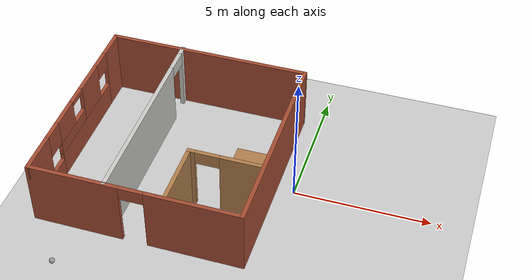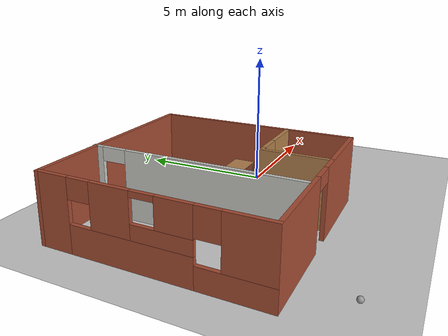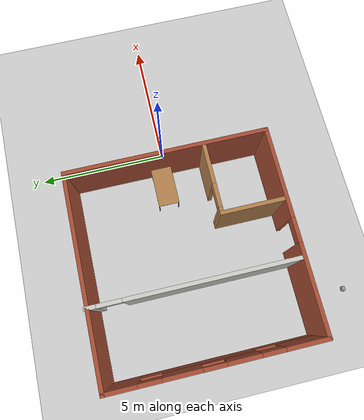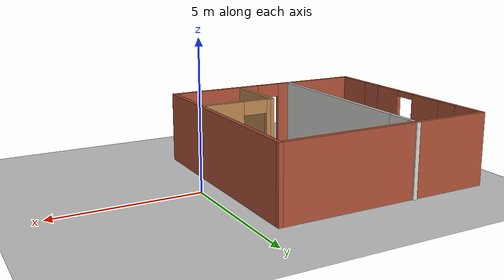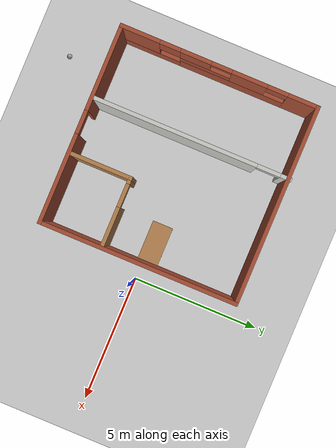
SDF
<sdf version="1.6">
 <world name="default">
  <plugin name="hello" filename="libhello.so"/>
  <light name="sun" type="directional">
   <pose>0 0 10 0 -0 0</pose>
   <diffuse>0.8 0.8 0.8 1</diffuse>
   <specular>0.2 0.2 0.2 1</specular>
   <attenuation>
    <range>1000</range>
    <constant>0.9</constant>
    <linear>0.01</linear>
    <quadratic>0.001</quadratic>
   </attenuation>
   <direction>-0.5 0.1 -0.9</direction>
  </light>
  <model name="ground_plane">
   <static>1</static>
   <link name="link">
    <collision name="collision">
     <geometry><plane><normal>0 0 1</normal><size>100 100</size></plane></geometry>
     <surface>
      <contact><collide_bitmask>65535</collide_bitmask></contact>
      <friction><ode><mu>100</mu><mu2>50</mu2></ode></friction>
     </surface>
    </collision>
    <visual name="visual">
     <cast_shadows>0</cast_shadows>
     <geometry><plane><normal>0 0 1</normal><size>100 100</size></plane></geometry>
     <material>
      <script><uri>file://media/materials/scripts/gazebo.material</uri><name>Gazebo/Grey</name></script>
     </material>
    </visual>
   </link>
  </model>
  <gravity>0 0 -9.8</gravity>
  <magnetic_field>6e-06 2.3e-05 -4.2e-05</magnetic_field>
  <atmosphere type="adiabatic"/>
  <physics name="default_physics" default="0" type="ode">
   <max_step_size>0.001</max_step_size>
   <real_time_factor>1</real_time_factor>
   <real_time_update_rate>1000</real_time_update_rate>
  </physics>
  <scene><ambient>0.4 0.4 0.4 1</ambient><background>0.7 0.7 0.7 1</background><shadows>1</shadows></scene>
  <spherical_coordinates>
   <surface_model>EARTH_WGS84</surface_model>
   <latitude_deg>0</latitude_deg>
   <longitude_deg>0</longitude_deg>
   <elevation>0</elevation>
   <heading_deg>0</heading_deg>
  </spherical_coordinates>
  <model name="Building">
   <pose>-3.58085 -0.038218 0 0 -0 0</pose>
   <link name="Wall_13">
    <pose>-4.73046 -0.023766 0 0 -0 -1.5708</pose>
    <visual name="Wall_13_Visual_0">
     <pose>-3.26262 0 1.25 0 -0 0</pose>
     <geometry><box><size>1.22475 0.15 2.5</size></box></geometry>
     <material>
      <script><uri>file://media/materials/scripts/gazebo.material</uri><name>Gazebo/Bricks</name></script>
      <ambient>1 1 1 1</ambient>
     </material>
     <meta><layer>0</layer></meta>
    </visual>
    <collision name="Wall_13_Collision_0">
     <geometry><box><size>1.22475 0.15 2.5</size></box></geometry>
     <pose>-3.26262 0 1.25 0 -0 0</pose>
    </collision>
    <visual name="Wall_13_Visual_1">
     <pose>-0.568495 0 0.5 0 -0 0</pose>
     <geometry><box><size>4.16351 0.15 1</size></box></geometry>
     <material>
      <script><uri>file://media/materials/scripts/gazebo.material</uri><name>Gazebo/Bricks</name></script>
      <ambient>1 1 1 1</ambient>
     </material>
     <meta><layer>0</layer></meta>
    </visual>
    <collision name="Wall_13_Collision_1">
     <geometry><box><size>4.16351 0.15 1</size></box></geometry>
     <pose>-0.568495 0 0.5 0 -0 0</pose>
    </collision>
    <visual name="Wall_13_Visual_2">
     <pose>2.69413 0 0.375 0 -0 0</pose>
     <geometry><box><size>2.36174 0.15 0.75</size></box></geometry>
     <material>
      <script><uri>file://media/materials/scripts/gazebo.material</uri><name>Gazebo/Bricks</name></script>
      <ambient>1 1 1 1</ambient>
     </material>
     <meta><layer>0</layer></meta>
    </visual>
    <collision name="Wall_13_Collision_2">
     <geometry><box><size>2.36174 0.15 0.75</size></box></geometry>
     <pose>2.69413 0 0.375 0 -0 0</pose>
    </collision>
    <visual name="Wall_13_Visual_3">
     <pose>3.09413 0 1.625 0 -0 0</pose>
     <geometry><box><size>1.56174 0.15 1.75</size></box></geometry>
     <material>
      <script><uri>file://media/materials/scripts/gazebo.material</uri><name>Gazebo/Bricks</name></script>
      <ambient>1 1 1 1</ambient>
     </material>
     <meta><layer>0</layer></meta>
    </visual>
    <collision name="Wall_13_Collision_3">
     <geometry><box><size>1.56174 0.15 1.75</size></box></geometry>
     <pose>3.09413 0 1.625 0 -0 0</pose>
    </collision>
    <visual name="Wall_13_Visual_4">
     <pose>-1.16311 0 1.75 0 -0 0</pose>
     <geometry><box><size>1.37428 0.15 1.5</size></box></geometry>
     <material>
      <script><uri>file://media/materials/scripts/gazebo.material</uri><name>Gazebo/Bricks</name></script>
      <ambient>1 1 1 1</ambient>
     </material>
     <meta><layer>0</layer></meta>
    </visual>
    <collision name="Wall_13_Collision_4">
     <geometry><box><size>1.37428 0.15 1.5</size></box></geometry>
     <pose>-1.16311 0 1.75 0 -0 0</pose>
    </collision>
    <visual name="Wall_13_Visual_5">
     <pose>0.518644 0 1.25 0 -0 0</pose>
     <geometry><box><size>1.98923 0.15 0.5</size></box></geometry>
     <material>
      <script><uri>file://media/materials/scripts/gazebo.material</uri><name>Gazebo/Bricks</name></script>
      <ambient>1 1 1 1</ambient>
     </material>
     <meta><layer>0</layer></meta>
    </visual>
    <collision name="Wall_13_Collision_5">
     <geometry><box><size>1.98923 0.15 0.5</size></box></geometry>
     <pose>0.518644 0 1.25 0 -0 0</pose>
    </collision>
    <visual name="Wall_13_Visual_6">
     <pose>0.918644 0 2 0 -0 0</pose>
     <geometry><box><size>1.18923 0.15 1</size></box></geometry>
     <material>
      <script><uri>file://media/materials/scripts/gazebo.material</uri><name>Gazebo/Bricks</name></script>
      <ambient>1 1 1 1</ambient>
     </material>
     <meta><layer>0</layer></meta>
    </visual>
    <collision name="Wall_13_Collision_6">
     <geometry><box><size>1.18923 0.15 1</size></box></geometry>
     <pose>0.918644 0 2 0 -0 0</pose>
    </collision>
    <visual name="Wall_13_Visual_7">
     <pose>1.91326 0 2.025 0 -0 0</pose>
     <geometry><box><size>0.8 0.15 0.95</size></box></geometry>
     <material>
      <script><uri>file://media/materials/scripts/gazebo.material</uri><name>Gazebo/Bricks</name></script>
      <ambient>1 1 1 1</ambient>
     </material>
     <meta><layer>0</layer></meta>
    </visual>
    <collision name="Wall_13_Collision_7">
     <geometry><box><size>0.8 0.15 0.95</size></box></geometry>
     <pose>1.91326 0 2.025 0 -0 0</pose>
    </collision>
    <visual name="Wall_13_Visual_8">
     <pose>-2.25025 0 2.15 0 -0 0</pose>
     <geometry><box><size>0.8 0.15 0.7</size></box></geometry>
     <material>
      <script><uri>file://media/materials/scripts/gazebo.material</uri><name>Gazebo/Bricks</name></script>
      <ambient>1 1 1 1</ambient>
     </material>
     <meta><layer>0</layer></meta>
    </visual>
    <collision name="Wall_13_Collision_8">
     <geometry><box><size>0.8 0.15 0.7</size></box></geometry>
     <pose>-2.25025 0 2.15 0 -0 0</pose>
    </collision>
    <visual name="Wall_13_Visual_9">
     <pose>-0.075972 0 2.4 0 -0 0</pose>
     <geometry><box><size>0.8 0.15 0.2</size></box></geometry>
     <material>
      <script><uri>file://media/materials/scripts/gazebo.material</uri><name>Gazebo/Bricks</name></script>
      <ambient>1 1 1 1</ambient>
     </material>
     <meta><layer>0</layer></meta>
    </visual>
    <collision name="Wall_13_Collision_9">
     <geometry><box><size>0.8 0.15 0.2</size></box></geometry>
     <pose>-0.075972 0 2.4 0 -0 0</pose>
    </collision>
   </link>
   <link name="Wall_14">
    <pose>-0.930463 -3.82377 0 0 -0 0</pose>
    <visual name="Wall_14_Visual_0">
     <pose>-2.20049 0 1.25 0 -0 0</pose>
     <geometry><box><size>3.34903 0.15 2.5</size></box></geometry>
     <material>
      <script><uri>file://media/materials/scripts/gazebo.material</uri><name>Gazebo/Bricks</name></script>
      <ambient>1 1 1 1</ambient>
     </material>
     <meta><layer>0</layer></meta>
    </visual>
    <collision name="Wall_14_Collision_0">
     <geometry><box><size>3.34903 0.15 2.5</size></box></geometry>
     <pose>-2.20049 0 1.25 0 -0 0</pose>
    </collision>
    <visual name="Wall_14_Visual_1">
     <pose>2.12451 0 1.25 0 -0 0</pose>
     <geometry><box><size>3.50097 0.15 2.5</size></box></geometry>
     <material>
      <script><uri>file://media/materials/scripts/gazebo.material</uri><name>Gazebo/Bricks</name></script>
      <ambient>1 1 1 1</ambient>
     </material>
     <meta><layer>0</layer></meta>
    </visual>
    <collision name="Wall_14_Collision_1">
     <geometry><box><size>3.50097 0.15 2.5</size></box></geometry>
     <pose>2.12451 0 1.25 0 -0 0</pose>
    </collision>
    <visual name="Wall_14_Visual_2">
     <pose>-0.075972 0 2.25 0 -0 0</pose>
     <geometry><box><size>0.9 0.15 0.5</size></box></geometry>
     <material>
      <script><uri>file://media/materials/scripts/gazebo.material</uri><name>Gazebo/Bricks</name></script>
      <ambient>1 1 1 1</ambient>
     </material>
     <meta><layer>0</layer></meta>
    </visual>
    <collision name="Wall_14_Collision_2">
     <geometry><box><size>0.9 0.15 0.5</size></box></geometry>
     <pose>-0.075972 0 2.25 0 -0 0</pose>
    </collision>
   </link>
   <link name="Wall_15">
    <collision name="Wall_15_Collision">
     <geometry><box><size>7.75 0.15 2.5</size></box></geometry>
     <pose>0 0 1.25 0 -0 0</pose>
    </collision>
    <visual name="Wall_15_Visual">
     <pose>0 0 1.25 0 -0 0</pose>
     <geometry><box><size>7.75 0.15 2.5</size></box></geometry>
     <material>
      <script><uri>file://media/materials/scripts/gazebo.material</uri><name>Gazebo/Bricks</name></script>
      <ambient>1 1 1 1</ambient>
     </material>
     <meta><layer>0</layer></meta>
    </visual>
    <pose>2.86954 -0.023766 0 0 -0 1.5708</pose>
   </link>
   <link name="Wall_16">
    <collision name="Wall_16_Collision">
     <geometry><box><size>7.75 0.15 2.5</size></box></geometry>
     <pose>0 0 1.25 0 -0 0</pose>
    </collision>
    <visual name="Wall_16_Visual">
     <pose>0 0 1.25 0 -0 0</pose>
     <geometry><box><size>7.75 0.15 2.5</size></box></geometry>
     <material>
      <script><uri>file://media/materials/scripts/gazebo.material</uri><name>Gazebo/Bricks</name></script>
      <ambient>1 1 1 1</ambient>
     </material>
     <meta><layer>0</layer></meta>
    </visual>
    <pose>-0.930463 3.77623 0 0 -0 3.14159</pose>
   </link>
   <link name="Wall_18">
    <pose>-1.97754 0.023766 0 0 -0 1.5708</pose>
    <visual name="Wall_18_Visual_0">
     <pose>-0.662301 0 1.25 0 -0 0</pose>
     <geometry><box><size>6.4254 0.15 2.5</size></box></geometry>
     <material>
      <script><uri>file://media/materials/scripts/gazebo.material</uri><name>Gazebo/CeilingTiled</name></script>
      <ambient>0.996078 0.47451 0.0196078 1</ambient>
     </material>
     <meta><layer>0</layer></meta>
    </visual>
    <collision name="Wall_18_Collision_0">
     <geometry><box><size>6.4254 0.15 2.5</size></box></geometry>
     <pose>-0.662301 0 1.25 0 -0 0</pose>
    </collision>
    <visual name="Wall_18_Visual_1">
     <pose>3.6627 0 1.25 0 -0 0</pose>
     <geometry><box><size>0.424601 0.15 2.5</size></box></geometry>
     <material>
      <script><uri>file://media/materials/scripts/gazebo.material</uri><name>Gazebo/CeilingTiled</name></script>
      <ambient>0.996078 0.47451 0.0196078 1</ambient>
     </material>
     <meta><layer>0</layer></meta>
    </visual>
    <collision name="Wall_18_Collision_1">
     <geometry><box><size>0.424601 0.15 2.5</size></box></geometry>
     <pose>3.6627 0 1.25 0 -0 0</pose>
    </collision>
    <visual name="Wall_18_Visual_2">
     <pose>3.0004 0 2.25 0 -0 0</pose>
     <geometry><box><size>0.9 0.15 0.5</size></box></geometry>
     <material>
      <script><uri>file://media/materials/scripts/gazebo.material</uri><name>Gazebo/CeilingTiled</name></script>
      <ambient>0.996078 0.47451 0.0196078 1</ambient>
     </material>
     <meta><layer>0</layer></meta>
    </visual>
    <collision name="Wall_18_Collision_2">
     <geometry><box><size>0.9 0.15 0.5</size></box></geometry>
     <pose>3.0004 0 2.25 0 -0 0</pose>
    </collision>
   </link>
   <link name="Wall_20">
    <collision name="Wall_20_Collision">
     <geometry><box><size>2.5 0.15 2.5</size></box></geometry>
     <pose>0 0 1.25 0 -0 0</pose>
    </collision>
    <visual name="Wall_20_Visual">
     <pose>0 0 1.25 0 -0 0</pose>
     <geometry><box><size>2.5 0.15 2.5</size></box></geometry>
     <material>
      <script><uri>file://media/materials/scripts/gazebo.material</uri><name>Gazebo/Wood</name></script>
      <ambient>1 1 1 1</ambient>
     </material>
     <meta><layer>0</layer></meta>
    </visual>
    <pose>0.173226 -2.61247 0 0 -0 1.5708</pose>
   </link>
   <link name="Wall_21">
    <pose>1.47323 -1.43748 0 0 -0 0</pose>
    <visual name="Wall_21_Visual_0">
     <pose>-1.22711 0 1.25 0 -0 0</pose>
     <geometry><box><size>0.295788 0.15 2.5</size></box></geometry>
     <material>
      <script><uri>file://media/materials/scripts/gazebo.material</uri><name>Gazebo/Wood</name></script>
      <ambient>1 1 1 1</ambient>
     </material>
     <meta><layer>0</layer></meta>
    </visual>
    <collision name="Wall_21_Collision_0">
     <geometry><box><size>0.295788 0.15 2.5</size></box></geometry>
     <pose>-1.22711 0 1.25 0 -0 0</pose>
    </collision>
    <visual name="Wall_21_Visual_1">
     <pose>0.597894 0 1.25 0 -0 0</pose>
     <geometry><box><size>1.55421 0.15 2.5</size></box></geometry>
     <material>
      <script><uri>file://media/materials/scripts/gazebo.material</uri><name>Gazebo/Wood</name></script>
      <ambient>1 1 1 1</ambient>
     </material>
     <meta><layer>0</layer></meta>
    </visual>
    <collision name="Wall_21_Collision_1">
     <geometry><box><size>1.55421 0.15 2.5</size></box></geometry>
     <pose>0.597894 0 1.25 0 -0 0</pose>
    </collision>
    <visual name="Wall_21_Visual_2">
     <pose>-0.629212 0 2.25 0 -0 0</pose>
     <geometry><box><size>0.9 0.15 0.5</size></box></geometry>
     <material>
      <script><uri>file://media/materials/scripts/gazebo.material</uri><name>Gazebo/Wood</name></script>
      <ambient>1 1 1 1</ambient>
     </material>
     <meta><layer>0</layer></meta>
    </visual>
    <collision name="Wall_21_Collision_2">
     <geometry><box><size>0.9 0.15 0.5</size></box></geometry>
     <pose>-0.629212 0 2.25 0 -0 0</pose>
    </collision>
   </link>
   <static>1</static>
  </model>
  <model name="table">
   <static>1</static>
   <link name="link">
    <collision name="surface">
     <pose>0 0 1 0 -0 0</pose>
     <geometry><box><size>1.5 0.8 0.03</size></box></geometry>
     <surface><friction><ode><mu>0.6</mu><mu2>0.6</mu2></ode></friction></surface>
    </collision>
    <visual name="visual1">
     <pose>0 0 1 0 -0 0</pose>
     <geometry><box><size>1.5 0.8 0.03</size></box></geometry>
     <material>
      <script><uri>file://media/materials/scripts/gazebo.material</uri><name>Gazebo/Wood</name></script>
     </material>
    </visual>
    <collision name="front_left_leg">
     <pose>0.68 0.38 0.5 0 -0 0</pose>
     <geometry><cylinder><radius>0.02</radius><length>1</length></cylinder></geometry>
    </collision>
    <visual name="front_left_leg">
     <pose>0.68 0.38 0.5 0 -0 0</pose>
     <geometry><cylinder><radius>0.02</radius><length>1</length></cylinder></geometry>
     <material>
      <script><uri>file://media/materials/scripts/gazebo.material</uri><name>Gazebo/Grey</name></script>
     </material>
    </visual>
    <collision name="front_right_leg">
     <pose>0.68 -0.38 0.5 0 -0 0</pose>
     <geometry><cylinder><radius>0.02</radius><length>1</length></cylinder></geometry>
    </collision>
    <visual name="front_right_leg">
     <pose>0.68 -0.38 0.5 0 -0 0</pose>
     <geometry><cylinder><radius>0.02</radius><length>1</length></cylinder></geometry>
     <material>
      <script><uri>file://media/materials/scripts/gazebo.material</uri><name>Gazebo/Grey</name></script>
     </material>
    </visual>
    <collision name="back_right_leg">
     <pose>-0.68 -0.38 0.5 0 -0 0</pose>
     <geometry><cylinder><radius>0.02</radius><length>1</length></cylinder></geometry>
    </collision>
    <visual name="back_right_leg">
     <pose>-0.68 -0.38 0.5 0 -0 0</pose>
     <geometry><cylinder><radius>0.02</radius><length>1</length></cylinder></geometry>
     <material>
      <script><uri>file://media/materials/scripts/gazebo.material</uri><name>Gazebo/Grey</name></script>
     </material>
    </visual>
    <collision name="back_left_leg">
     <pose>-0.68 0.38 0.5 0 -0 0</pose>
     <geometry><cylinder><radius>0.02</radius><length>1</length></cylinder></geometry>
    </collision>
    <visual name="back_left_leg">
     <pose>-0.68 0.38 0.5 0 -0 0</pose>
     <geometry><cylinder><radius>0.02</radius><length>1</length></cylinder></geometry>
     <material>
      <script><uri>file://media/materials/scripts/gazebo.material</uri><name>Gazebo/Grey</name></script>
     </material>
    </visual>
   </link>
   <pose>-1.575 0.209646 0 0 -0 0</pose>
  </model>
  <audio><device>default</device></audio>
  <model name="my_ball">
   <link name="link_0">
    <inertial>
     <mass>1</mass>
     <inertia><ixx>0.1</ixx><ixy>0</ixy><ixz>0</ixz><iyy>0.1</iyy><iyz>0</iyz><izz>0.1</izz></inertia>
    </inertial>
    <visual name="visual">
     <geometry><sphere><radius>0.1</radius></sphere></geometry>
     <material>
      <lighting>1</lighting>
      <script><uri>file://media/materials/scripts/gazebo.material</uri><name>Gazebo/Grey</name></script>
      <shader type="vertex"><normal_map>__default__</normal_map></shader>
      <ambient>0.3 0.3 0.3 1</ambient>
      <diffuse>0.7 0.7 0.7 1</diffuse>
      <specular>0.01 0.01 0.01 1</specular>
      <emissive>1 1 1 1</emissive>
     </material>
    </visual>
    <collision name="collision">
     <geometry><sphere><radius>0.1</radius></sphere></geometry>
     <surface>
      <friction>
       <ode><mu>1</mu><mu2>1</mu2><fdir1>0 0 0</fdir1><slip1>0</slip1><slip2>0</slip2></ode>
       <torsional>
        <coefficient>1</coefficient>
        <patch_radius>0</patch_radius>
        <surface_radius>0</surface_radius>
        <use_patch_radius>1</use_patch_radius>
        <ode><slip>0</slip></ode>
       </torsional>
      </friction>
      <bounce><restitution_coefficient>0</restitution_coefficient><threshold>1e+06</threshold></bounce>
      <contact>
       <collide_without_contact>0</collide_without_contact>
       <collide_without_contact_bitmask>1</collide_without_contact_bitmask>
       <collide_bitmask>1</collide_bitmask>
       <ode>
        <soft_cfm>0</soft_cfm>
        <soft_erp>0.2</soft_erp>
        <kp>1e+13</kp>
        <kd>1</kd>
        <max_vel>0.01</max_vel>
        <min_depth>0</min_depth>
       </ode>
       <bullet>
        <split_impulse>1</split_impulse>
        <split_impulse_penetration_threshold>-0.01</split_impulse_penetration_threshold>
        <soft_cfm>0</soft_cfm>
        <soft_erp>0.2</soft_erp>
        <kp>1e+13</kp>
        <kd>1</kd>
       </bullet>
      </contact>
     </surface>
    </collision>
   </link>
   <static>0</static>
   <pose>-6.91099 -5.62145 0.1 0 -0 0</pose>
  </model>
 </world>
</sdf>
